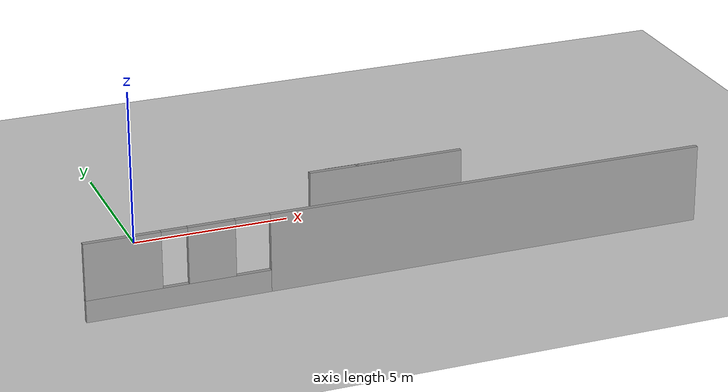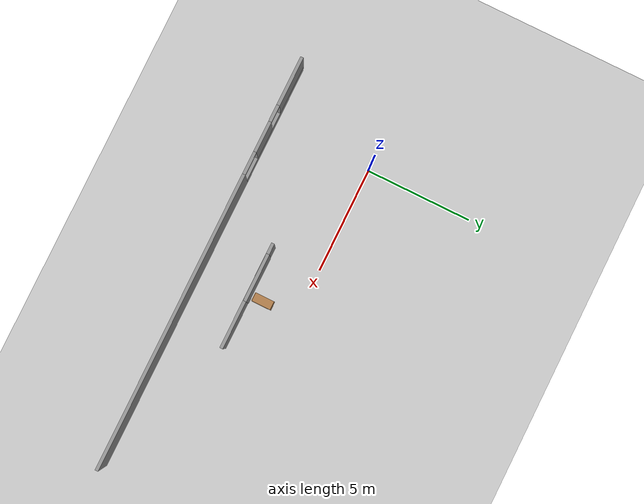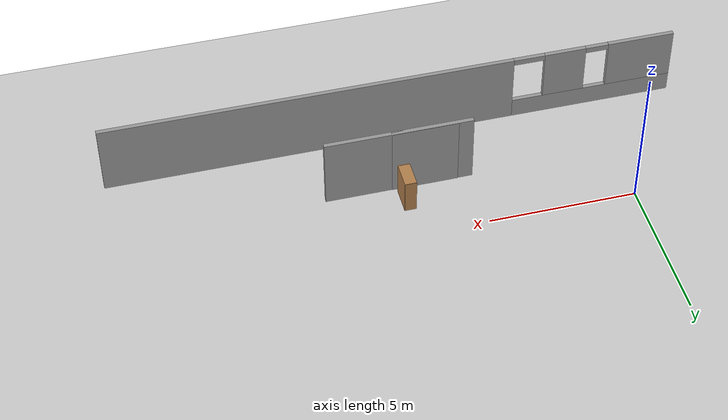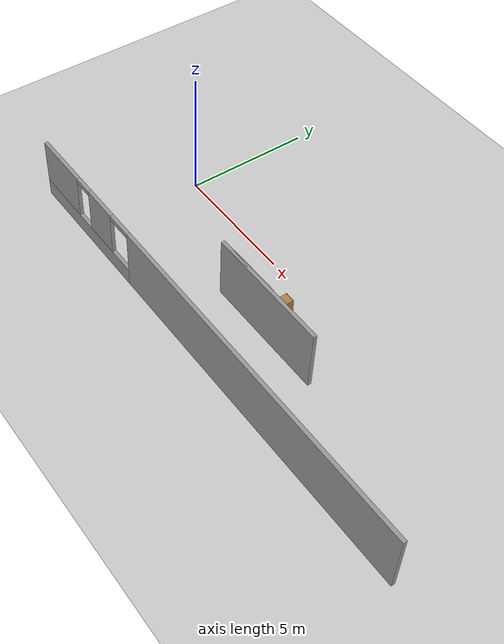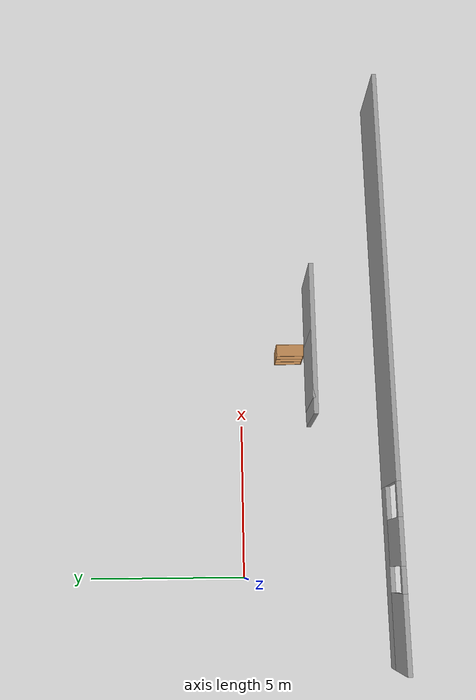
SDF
<sdf version="1.6">
 <world name="default">
  <model name="ground_plane">
   <static>1</static>
   <link name="link">
    <collision name="collision">
     <geometry><plane><normal>0 0 1</normal><size>100 100</size></plane></geometry>
     <surface>
      <contact><collide_bitmask>65535</collide_bitmask></contact>
      <friction><ode><mu>100</mu><mu2>50</mu2></ode></friction>
     </surface>
    </collision>
    <visual name="visual">
     <cast_shadows>0</cast_shadows>
     <geometry><plane><normal>0 0 1</normal><size>100 100</size></plane></geometry>
     <material>
      <script><uri>file://media/materials/scripts/gazebo.material</uri><name>Gazebo/Grey</name></script>
     </material>
    </visual>
   </link>
  </model>
  <model name="dunder_mifflin_scranton_full">
   <pose>4.5312 0.479645 0 0 -0 0</pose>
   <link name="Wall_56">
    <collision name="Wall_56_Collision">
     <geometry><box><size>2.25 0.15 2.5</size></box></geometry>
     <pose>0 0 1.25 0 -0 0</pose>
    </collision>
    <visual name="Wall_56_Visual">
     <pose>0 0 1.25 0 -0 0</pose>
     <geometry><box><size>2.25 0.15 2.5</size></box></geometry>
     <material>
      <script><uri>file://media/materials/scripts/gazebo.material</uri><name>Gazebo/Grey</name></script>
      <ambient>1 1 1 1</ambient>
     </material>
     <meta><layer>0</layer></meta>
    </visual>
    <pose>2.06386 -2.74897 0 0 -0 0</pose>
   </link>
   <link name="Wall_62">
    <collision name="Wall_62_Collision">
     <geometry><box><size>5 0.15 2.5</size></box></geometry>
     <pose>0 0 1.25 0 -0 0</pose>
    </collision>
    <visual name="Wall_62_Visual">
     <pose>0 0 1.25 0 -0 0</pose>
     <geometry><box><size>5 0.15 2.5</size></box></geometry>
     <material>
      <script><uri>file://media/materials/scripts/gazebo.material</uri><name>Gazebo/Grey</name></script>
      <ambient>1 1 1 1</ambient>
     </material>
     <meta><layer>0</layer></meta>
    </visual>
    <pose>2.93165 -2.76319 0 0 -0 0</pose>
   </link>
   <link name="Wall_8">
    <pose>2.51788 -5.2 0 0 -0 3.14159</pose>
    <visual name="Wall_8_Visual_0">
     <pose>-2.83559 0 1.25 0 -0 0</pose>
     <geometry><box><size>14.0788 0.15 2.5</size></box></geometry>
     <material>
      <script><uri>file://media/materials/scripts/gazebo.material</uri><name>Gazebo/Grey</name></script>
      <ambient>1 1 1 1</ambient>
     </material>
     <meta><layer>0</layer></meta>
    </visual>
    <collision name="Wall_8_Collision_0">
     <geometry><box><size>14.0788 0.15 2.5</size></box></geometry>
     <pose>-2.83559 0 1.25 0 -0 0</pose>
    </collision>
    <visual name="Wall_8_Visual_1">
     <pose>7.03941 0 0.35 0 -0 0</pose>
     <geometry><box><size>5.67118 0.15 0.7</size></box></geometry>
     <material>
      <script><uri>file://media/materials/scripts/gazebo.material</uri><name>Gazebo/Grey</name></script>
      <ambient>1 1 1 1</ambient>
     </material>
     <meta><layer>0</layer></meta>
    </visual>
    <collision name="Wall_8_Collision_1">
     <geometry><box><size>5.67118 0.15 0.7</size></box></geometry>
     <pose>7.03941 0 0.35 0 -0 0</pose>
    </collision>
    <visual name="Wall_8_Visual_2">
     <pose>6.0123 0 1.6 0 -0 0</pose>
     <geometry><box><size>1.45519 0.15 1.8</size></box></geometry>
     <material>
      <script><uri>file://media/materials/scripts/gazebo.material</uri><name>Gazebo/Grey</name></script>
      <ambient>1 1 1 1</ambient>
     </material>
     <meta><layer>0</layer></meta>
    </visual>
    <collision name="Wall_8_Collision_2">
     <geometry><box><size>1.45519 0.15 1.8</size></box></geometry>
     <pose>6.0123 0 1.6 0 -0 0</pose>
    </collision>
    <visual name="Wall_8_Visual_3">
     <pose>8.70745 0 1.6 0 -0 0</pose>
     <geometry><box><size>2.33511 0.15 1.8</size></box></geometry>
     <material>
      <script><uri>file://media/materials/scripts/gazebo.material</uri><name>Gazebo/Grey</name></script>
      <ambient>1 1 1 1</ambient>
     </material>
     <meta><layer>0</layer></meta>
    </visual>
    <collision name="Wall_8_Collision_3">
     <geometry><box><size>2.33511 0.15 1.8</size></box></geometry>
     <pose>8.70745 0 1.6 0 -0 0</pose>
    </collision>
    <visual name="Wall_8_Visual_4">
     <pose>4.74426 0 2.4 0 -0 0</pose>
     <geometry><box><size>1.08089 0.15 0.2</size></box></geometry>
     <material>
      <script><uri>file://media/materials/scripts/gazebo.material</uri><name>Gazebo/Grey</name></script>
      <ambient>1 1 1 1</ambient>
     </material>
     <meta><layer>0</layer></meta>
    </visual>
    <collision name="Wall_8_Collision_4">
     <geometry><box><size>1.08089 0.15 0.2</size></box></geometry>
     <pose>4.74426 0 2.4 0 -0 0</pose>
    </collision>
    <visual name="Wall_8_Visual_5">
     <pose>7.13989 0 2.4 0 -0 0</pose>
     <geometry><box><size>0.8 0.15 0.2</size></box></geometry>
     <material>
      <script><uri>file://media/materials/scripts/gazebo.material</uri><name>Gazebo/Grey</name></script>
      <ambient>1 1 1 1</ambient>
     </material>
     <meta><layer>0</layer></meta>
    </visual>
    <collision name="Wall_8_Collision_5">
     <geometry><box><size>0.8 0.15 0.2</size></box></geometry>
     <pose>7.13989 0 2.4 0 -0 0</pose>
    </collision>
   </link>
   <static>1</static>
  </model>
  <model name="bookshelf_2">
   <static>1</static>
   <link name="link">
    <inertial><mass>1</mass></inertial>
    <collision name="back">
     <pose>0 0.005 0.6 0 -0 0</pose>
     <geometry><box><size>0.9 0.01 1.2</size></box></geometry>
    </collision>
    <visual name="visual1">
     <pose>0 0.005 0.6 0 -0 0</pose>
     <geometry><box><size>0.9 0.01 1.2</size></box></geometry>
     <material>
      <script><uri>file://media/materials/scripts/gazebo.material</uri><name>Gazebo/Wood</name></script>
     </material>
    </visual>
    <collision name="left_side">
     <pose>0.45 -0.195 0.6 0 -0 0</pose>
     <geometry><box><size>0.02 0.4 1.2</size></box></geometry>
    </collision>
    <visual name="visual2">
     <pose>0.45 -0.195 0.6 0 -0 0</pose>
     <geometry><box><size>0.02 0.4 1.2</size></box></geometry>
     <material>
      <script><uri>file://media/materials/scripts/gazebo.material</uri><name>Gazebo/Wood</name></script>
     </material>
    </visual>
    <collision name="right_side">
     <pose>-0.45 -0.195 0.6 0 -0 0</pose>
     <geometry><box><size>0.02 0.4 1.2</size></box></geometry>
    </collision>
    <visual name="visual3">
     <pose>-0.45 -0.195 0.6 0 -0 0</pose>
     <geometry><box><size>0.02 0.4 1.2</size></box></geometry>
     <material>
      <script><uri>file://media/materials/scripts/gazebo.material</uri><name>Gazebo/Wood</name></script>
     </material>
    </visual>
    <collision name="bottom">
     <pose>0 -0.195 0.03 0 -0 0</pose>
     <geometry><box><size>0.88 0.4 0.06</size></box></geometry>
    </collision>
    <visual name="visual4">
     <pose>0 -0.195 0.03 0 -0 0</pose>
     <geometry><box><size>0.88 0.4 0.06</size></box></geometry>
     <material>
      <script><uri>file://media/materials/scripts/gazebo.material</uri><name>Gazebo/Wood</name></script>
     </material>
    </visual>
    <collision name="top">
     <pose>0 -0.195 1.19 0 -0 0</pose>
     <geometry><box><size>0.88 0.4 0.02</size></box></geometry>
    </collision>
    <visual name="visual5">
     <pose>0 -0.195 1.19 0 -0 0</pose>
     <geometry><box><size>0.88 0.4 0.02</size></box></geometry>
     <material>
      <script><uri>file://media/materials/scripts/gazebo.material</uri><name>Gazebo/Wood</name></script>
     </material>
    </visual>
    <collision name="low_shelf">
     <pose>0 -0.195 0.43 0 -0 0</pose>
     <geometry><box><size>0.88 0.4 0.02</size></box></geometry>
    </collision>
    <visual name="visual6">
     <pose>0 -0.195 0.43 0 -0 0</pose>
     <geometry><box><size>0.88 0.4 0.02</size></box></geometry>
     <material>
      <script><uri>file://media/materials/scripts/gazebo.material</uri><name>Gazebo/Wood</name></script>
     </material>
    </visual>
    <collision name="high_shelf">
     <pose>0 -0.195 0.8 0 -0 0</pose>
     <geometry><box><size>0.88 0.4 0.02</size></box></geometry>
    </collision>
    <visual name="visual7">
     <pose>0 -0.195 0.8 0 -0 0</pose>
     <geometry><box><size>0.88 0.4 0.02</size></box></geometry>
     <material>
      <script><uri>file://media/materials/scripts/gazebo.material</uri><name>Gazebo/Wood</name></script>
     </material>
    </visual>
   </link>
   <pose>7.55137 -1.62343 0 0 0 -1.5708</pose>
  </model>
 </world>
</sdf>
